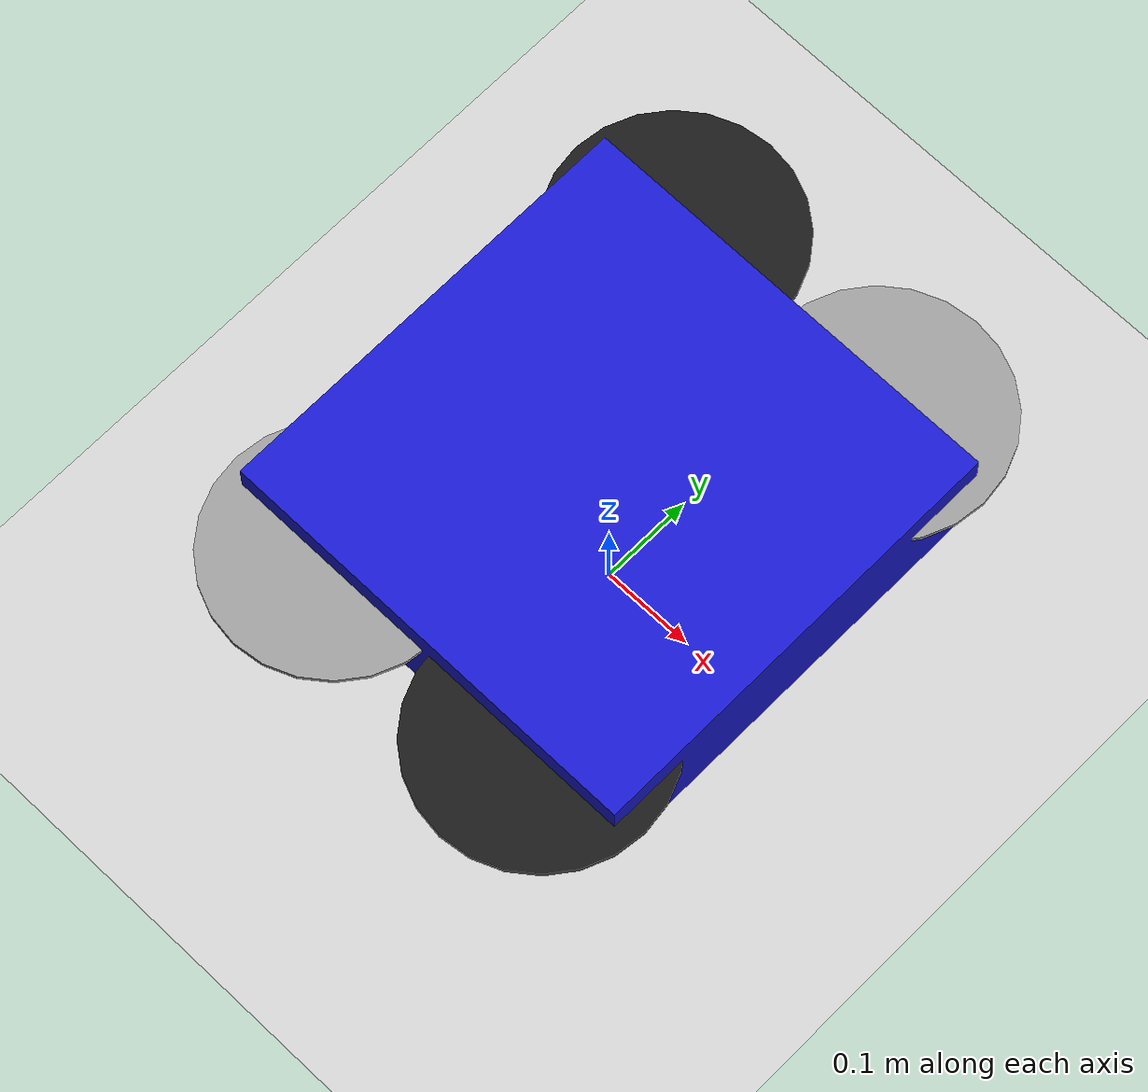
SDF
<?xml version="1.0" ?>
<sdf version="1.9">
  <world name="quadrotor_world">

    <physics name="1ms" type="ignored">
      <max_step_size>0.001</max_step_size>
      <real_time_factor>1.0</real_time_factor>
    </physics>

    <!-- Core simulation systems -->
    <plugin filename="gz-sim-physics-system"
            name="gz::sim::systems::Physics"/>
    <plugin filename="gz-sim-user-commands-system"
            name="gz::sim::systems::UserCommands"/>
    <plugin filename="gz-sim-scene-broadcaster-system"
            name="gz::sim::systems::SceneBroadcaster"/>
    <plugin filename="gz-sim-sensors-system"
            name="gz::sim::systems::Sensors">
      <render_engine>ogre2</render_engine>
    </plugin>

    <light type="directional" name="sun">
      <cast_shadows>true</cast_shadows>
      <pose>0 0 10 0 0 0</pose>
      <diffuse>0.8 0.8 0.8 1</diffuse>
      <specular>0.2 0.2 0.2 1</specular>
      <direction>-0.5 0.1 -0.9</direction>
    </light>

    <model name="ground_plane">
      <static>true</static>
      <link name="link">
        <collision name="collision">
          <geometry><plane><normal>0 0 1</normal><size>200 200</size></plane></geometry>
        </collision>
        <visual name="visual">
          <geometry><plane><normal>0 0 1</normal><size>200 200</size></plane></geometry>
          <material>
            <ambient>0.8 0.8 0.8 1</ambient>
            <diffuse>0.8 0.8 0.8 1</diffuse>
          </material>
        </visual>
      </link>
    </model>

    <model name="quadrotor">
      <pose>0 0 0.2 0 0 0</pose>

      <link name="base_link">
        <inertial>
          <mass>1.5</mass>
          <!-- box 0.47×0.47×0.11 m: Ixx=Iyy=(m/12)(y²+z²), Izz=(m/12)(x²+y²) -->
          <inertia>
            <ixx>0.029125</ixx><ixy>0</ixy><ixz>0</ixz>
            <iyy>0.029125</iyy><iyz>0</iyz>
            <izz>0.055225</izz>
          </inertia>
        </inertial>
        <collision name="base_collision">
          <geometry><box><size>0.47 0.47 0.11</size></box></geometry>
        </collision>
        <visual name="base_visual">
          <geometry><box><size>0.47 0.47 0.11</size></box></geometry>
          <material>
            <ambient>0.1 0.1 0.8 1</ambient>
            <diffuse>0.1 0.1 0.8 1</diffuse>
          </material>
        </visual>
      </link>

      <!-- Rotor 0: front-left, CCW -->
      <link name="rotor_0">
        <pose>0.13 -0.22 0.023 0 0 0</pose>
        <inertial>
          <mass>0.025</mass>
          <!-- cylinder r=0.128 l=0.005: Ixx=Iyy=(m/12)(3r²+l²), Izz=(m/2)r² -->
          <inertia><ixx>1.0245e-04</ixx><ixy>0</ixy><ixz>0</ixz>
                   <iyy>1.0245e-04</iyy><iyz>0</iyz><izz>2.048e-04</izz></inertia>
        </inertial>
        <collision name="col"><geometry><cylinder><length>0.005</length><radius>0.128</radius></cylinder></geometry></collision>
        <visual name="vis">
          <geometry><cylinder><length>0.005</length><radius>0.128</radius></cylinder></geometry>
          <material><ambient>0.1 0.1 0.1 1</ambient><diffuse>0.1 0.1 0.1 1</diffuse></material>
        </visual>
      </link>
      <joint name="rotor_0_joint" type="revolute">
        <parent>base_link</parent><child>rotor_0</child>
        <axis><xyz>0 0 1</xyz><limit><lower>-1e16</lower><upper>1e16</upper></limit></axis>
      </joint>

      <!-- Rotor 1: back-right, CCW -->
      <link name="rotor_1">
        <pose>-0.13 0.22 0.023 0 0 0</pose>
        <inertial>
          <mass>0.025</mass>
          <!-- cylinder r=0.128 l=0.005: Ixx=Iyy=(m/12)(3r²+l²), Izz=(m/2)r² -->
          <inertia><ixx>1.0245e-04</ixx><ixy>0</ixy><ixz>0</ixz>
                   <iyy>1.0245e-04</iyy><iyz>0</iyz><izz>2.048e-04</izz></inertia>
        </inertial>
        <collision name="col"><geometry><cylinder><length>0.005</length><radius>0.128</radius></cylinder></geometry></collision>
        <visual name="vis">
          <geometry><cylinder><length>0.005</length><radius>0.128</radius></cylinder></geometry>
          <material><ambient>0.1 0.1 0.1 1</ambient><diffuse>0.1 0.1 0.1 1</diffuse></material>
        </visual>
      </link>
      <joint name="rotor_1_joint" type="revolute">
        <parent>base_link</parent><child>rotor_1</child>
        <axis><xyz>0 0 1</xyz><limit><lower>-1e16</lower><upper>1e16</upper></limit></axis>
      </joint>

      <!-- Rotor 2: front-right, CW -->
      <link name="rotor_2">
        <pose>0.13 0.22 0.023 0 0 0</pose>
        <inertial>
          <mass>0.025</mass>
          <!-- cylinder r=0.128 l=0.005: Ixx=Iyy=(m/12)(3r²+l²), Izz=(m/2)r² -->
          <inertia><ixx>1.0245e-04</ixx><ixy>0</ixy><ixz>0</ixz>
                   <iyy>1.0245e-04</iyy><iyz>0</iyz><izz>2.048e-04</izz></inertia>
        </inertial>
        <collision name="col"><geometry><cylinder><length>0.005</length><radius>0.128</radius></cylinder></geometry></collision>
        <visual name="vis">
          <geometry><cylinder><length>0.005</length><radius>0.128</radius></cylinder></geometry>
          <material><ambient>0.6 0.6 0.6 1</ambient><diffuse>0.6 0.6 0.6 1</diffuse></material>
        </visual>
      </link>
      <joint name="rotor_2_joint" type="revolute">
        <parent>base_link</parent><child>rotor_2</child>
        <axis><xyz>0 0 1</xyz><limit><lower>-1e16</lower><upper>1e16</upper></limit></axis>
      </joint>

      <!-- Rotor 3: back-left, CW -->
      <link name="rotor_3">
        <pose>-0.13 -0.22 0.023 0 0 0</pose>
        <inertial>
          <mass>0.025</mass>
          <!-- cylinder r=0.128 l=0.005: Ixx=Iyy=(m/12)(3r²+l²), Izz=(m/2)r² -->
          <inertia><ixx>1.0245e-04</ixx><ixy>0</ixy><ixz>0</ixz>
                   <iyy>1.0245e-04</iyy><iyz>0</iyz><izz>2.048e-04</izz></inertia>
        </inertial>
        <collision name="col"><geometry><cylinder><length>0.005</length><radius>0.128</radius></cylinder></geometry></collision>
        <visual name="vis">
          <geometry><cylinder><length>0.005</length><radius>0.128</radius></cylinder></geometry>
          <material><ambient>0.6 0.6 0.6 1</ambient><diffuse>0.6 0.6 0.6 1</diffuse></material>
        </visual>
      </link>
      <joint name="rotor_3_joint" type="revolute">
        <parent>base_link</parent><child>rotor_3</child>
        <axis><xyz>0 0 1</xyz><limit><lower>-1e16</lower><upper>1e16</upper></limit></axis>
      </joint>

      <!-- Motor models (one plugin instance per rotor) -->
      <plugin filename="gz-sim-multicopter-motor-model-system"
              name="gz::sim::systems::MulticopterMotorModel">
        <robotNamespace>quadrotor</robotNamespace>
        <jointName>rotor_0_joint</jointName><linkName>rotor_0</linkName>
        <turningDirection>ccw</turningDirection>
        <timeConstantUp>0.0125</timeConstantUp><timeConstantDown>0.025</timeConstantDown>
        <maxRotVelocity>800.0</maxRotVelocity>
        <motorConstant>8.54858e-06</motorConstant><momentConstant>0.016</momentConstant>
        <commandSubTopic>command/motor_speed</commandSubTopic><motorNumber>0</motorNumber>
        <rotorDragCoefficient>8.06428e-05</rotorDragCoefficient>
        <rollingMomentCoefficient>1e-06</rollingMomentCoefficient>
        <motorSpeedPubTopic>motor_speed/0</motorSpeedPubTopic>
        <rotorVelocitySlowdownSim>10</rotorVelocitySlowdownSim>
      </plugin>

      <plugin filename="gz-sim-multicopter-motor-model-system"
              name="gz::sim::systems::MulticopterMotorModel">
        <robotNamespace>quadrotor</robotNamespace>
        <jointName>rotor_1_joint</jointName><linkName>rotor_1</linkName>
        <turningDirection>ccw</turningDirection>
        <timeConstantUp>0.0125</timeConstantUp><timeConstantDown>0.025</timeConstantDown>
        <maxRotVelocity>800.0</maxRotVelocity>
        <motorConstant>8.54858e-06</motorConstant><momentConstant>0.016</momentConstant>
        <commandSubTopic>command/motor_speed</commandSubTopic><motorNumber>1</motorNumber>
        <rotorDragCoefficient>8.06428e-05</rotorDragCoefficient>
        <rollingMomentCoefficient>1e-06</rollingMomentCoefficient>
        <motorSpeedPubTopic>motor_speed/1</motorSpeedPubTopic>
        <rotorVelocitySlowdownSim>10</rotorVelocitySlowdownSim>
      </plugin>

      <plugin filename="gz-sim-multicopter-motor-model-system"
              name="gz::sim::systems::MulticopterMotorModel">
        <robotNamespace>quadrotor</robotNamespace>
        <jointName>rotor_2_joint</jointName><linkName>rotor_2</linkName>
        <turningDirection>cw</turningDirection>
        <timeConstantUp>0.0125</timeConstantUp><timeConstantDown>0.025</timeConstantDown>
        <maxRotVelocity>800.0</maxRotVelocity>
        <motorConstant>8.54858e-06</motorConstant><momentConstant>0.016</momentConstant>
        <commandSubTopic>command/motor_speed</commandSubTopic><motorNumber>2</motorNumber>
        <rotorDragCoefficient>8.06428e-05</rotorDragCoefficient>
        <rollingMomentCoefficient>1e-06</rollingMomentCoefficient>
        <motorSpeedPubTopic>motor_speed/2</motorSpeedPubTopic>
        <rotorVelocitySlowdownSim>10</rotorVelocitySlowdownSim>
      </plugin>

      <plugin filename="gz-sim-multicopter-motor-model-system"
              name="gz::sim::systems::MulticopterMotorModel">
        <robotNamespace>quadrotor</robotNamespace>
        <jointName>rotor_3_joint</jointName><linkName>rotor_3</linkName>
        <turningDirection>cw</turningDirection>
        <timeConstantUp>0.0125</timeConstantUp><timeConstantDown>0.025</timeConstantDown>
        <maxRotVelocity>800.0</maxRotVelocity>
        <motorConstant>8.54858e-06</motorConstant><momentConstant>0.016</momentConstant>
        <commandSubTopic>command/motor_speed</commandSubTopic><motorNumber>3</motorNumber>
        <rotorDragCoefficient>8.06428e-05</rotorDragCoefficient>
        <rollingMomentCoefficient>1e-06</rollingMomentCoefficient>
        <motorSpeedPubTopic>motor_speed/3</motorSpeedPubTopic>
        <rotorVelocitySlowdownSim>10</rotorVelocitySlowdownSim>
      </plugin>

      <!-- Velocity controller: publishes to /quadrotor/cmd_vel -->
      <plugin filename="gz-sim-multicopter-control-system"
              name="gz::sim::systems::MulticopterVelocityControl">
        <robotNamespace>quadrotor</robotNamespace>
        <commandSubTopic>cmd_vel</commandSubTopic>
        <enableSubTopic>enable</enableSubTopic>
        <comLinkName>base_link</comLinkName>
        <velocityGain>2.7 2.7 2.7</velocityGain>
        <attitudeGain>2 3 0.15</attitudeGain>
        <angularRateGain>0.4 0.52 0.18</angularRateGain>
        <maximumLinearAcceleration>2 2 2</maximumLinearAcceleration>
        <rotorConfiguration>
          <rotor>
            <jointName>rotor_0_joint</jointName>
            <forceConstant>8.54858e-06</forceConstant>
            <momentConstant>0.016</momentConstant>
            <direction>1</direction>
          </rotor>
          <rotor>
            <jointName>rotor_1_joint</jointName>
            <forceConstant>8.54858e-06</forceConstant>
            <momentConstant>0.016</momentConstant>
            <direction>1</direction>
          </rotor>
          <rotor>
            <jointName>rotor_2_joint</jointName>
            <forceConstant>8.54858e-06</forceConstant>
            <momentConstant>0.016</momentConstant>
            <direction>-1</direction>
          </rotor>
          <rotor>
            <jointName>rotor_3_joint</jointName>
            <forceConstant>8.54858e-06</forceConstant>
            <momentConstant>0.016</momentConstant>
            <direction>-1</direction>
          </rotor>
        </rotorConfiguration>
      </plugin>

      <!-- Odometry → /quadrotor/odometry -->
      <plugin filename="gz-sim-odometry-publisher-system"
              name="gz::sim::systems::OdometryPublisher">
        <odomTopic>odometry</odomTopic>
        <robotBaseFrame>base_link</robotBaseFrame>
      </plugin>

    </model>

  </world>
</sdf>
